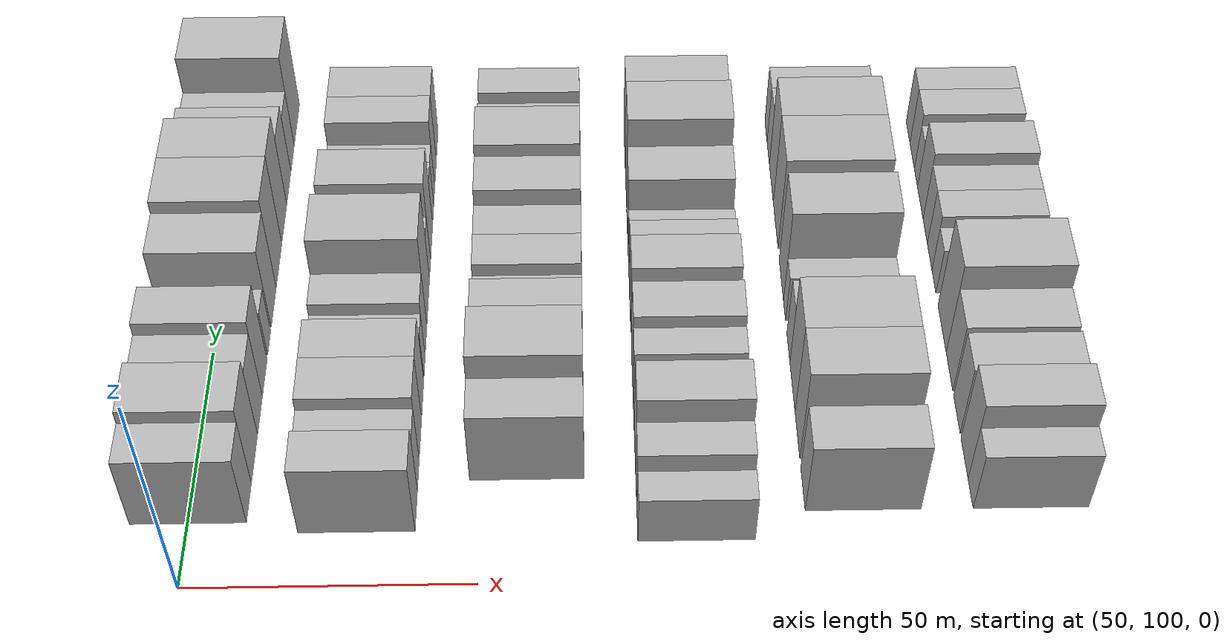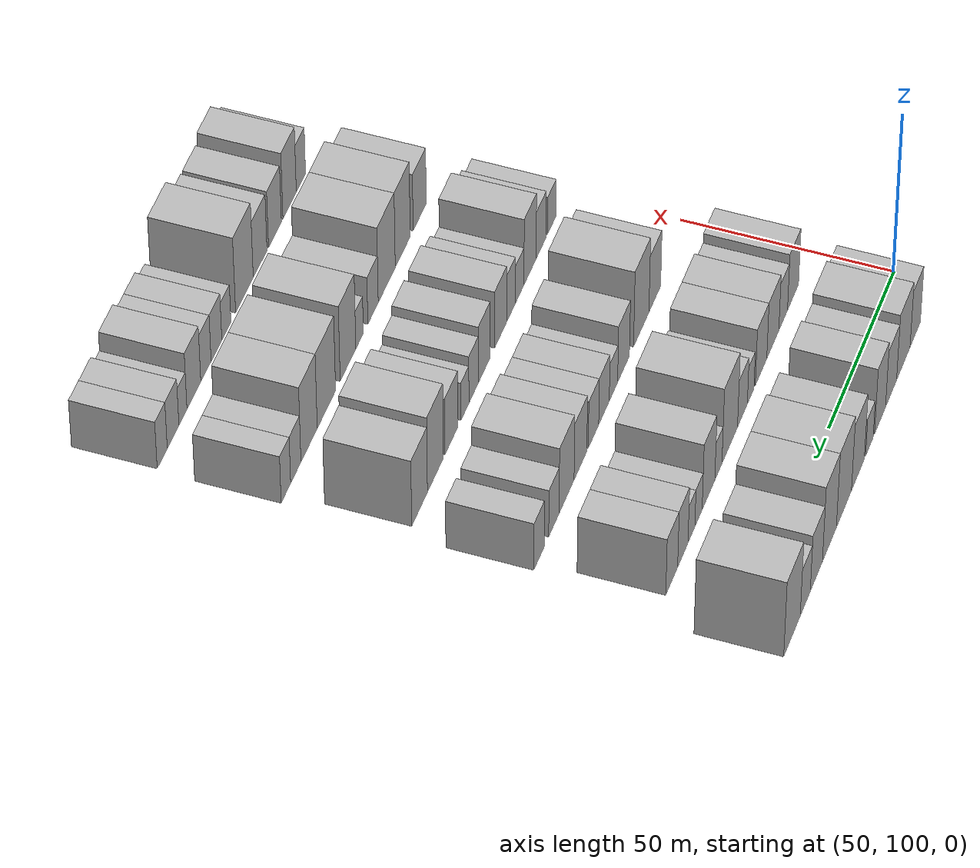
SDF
<sdf version="1.6">
 <world name="default">
  <model name="building_64">
   <static>1</static>
   <pose>50.0000 116.9136 0 0.000000 0.000000 0.000000</pose>
   <link name="link">
    <pose>0 0 9.00 0 0 0</pose>
    <collision name="collision"><geometry><box><size>20.0000 8.1119 18.0000</size></box></geometry></collision>
    <visual name="visual">
     <cast_shadows>0</cast_shadows>
     <geometry><box><size>20.0000 8.1119 18.0000</size></box></geometry>
     <material>
      <script>
       <uri>model://HANNAS_wall/materials/scripts</uri>
       <uri>model://HANNAS_wall/materials/textures</uri>
       <name>vrc/HANNAS_wall</name>
      </script>
     </material>
    </visual>
   </link>
  </model>
  <model name="building_65">
   <static>1</static>
   <pose>50.0000 126.2124 0 0.000000 0.000000 0.000000</pose>
   <link name="link">
    <pose>0 0 10.50 0 0 0</pose>
    <collision name="collision"><geometry><box><size>20.0000 10.4857 21.0000</size></box></geometry></collision>
    <visual name="visual">
     <cast_shadows>0</cast_shadows>
     <geometry><box><size>20.0000 10.4857 21.0000</size></box></geometry>
     <material>
      <script>
       <uri>model://HANNAS_wall/materials/scripts</uri>
       <uri>model://HANNAS_wall/materials/textures</uri>
       <name>vrc/HANNAS_wall</name>
      </script>
     </material>
    </visual>
   </link>
  </model>
  <model name="building_66">
   <static>1</static>
   <pose>50.0000 135.7124 0 0.000000 0.000000 0.000000</pose>
   <link name="link">
    <pose>0 0 9.00 0 0 0</pose>
    <collision name="collision"><geometry><box><size>20.0000 8.5142 18.0000</size></box></geometry></collision>
    <visual name="visual">
     <cast_shadows>0</cast_shadows>
     <geometry><box><size>20.0000 8.5142 18.0000</size></box></geometry>
     <material>
      <script>
       <uri>model://HANNAS_wall/materials/scripts</uri>
       <uri>model://HANNAS_wall/materials/textures</uri>
       <name>vrc/HANNAS_wall</name>
      </script>
     </material>
    </visual>
   </link>
  </model>
  <model name="building_67">
   <static>1</static>
   <pose>50.0000 144.1928 0 0.000000 0.000000 0.000000</pose>
   <link name="link">
    <pose>0 0 10.50 0 0 0</pose>
    <collision name="collision"><geometry><box><size>20.0000 8.4467 21.0000</size></box></geometry></collision>
    <visual name="visual">
     <cast_shadows>0</cast_shadows>
     <geometry><box><size>20.0000 8.4467 21.0000</size></box></geometry>
     <material>
      <script>
       <uri>model://HANNAS_wall/materials/scripts</uri>
       <uri>model://HANNAS_wall/materials/textures</uri>
       <name>vrc/HANNAS_wall</name>
      </script>
     </material>
    </visual>
   </link>
  </model>
  <model name="building_68">
   <static>1</static>
   <pose>50.0000 152.2779 0 0.000000 0.000000 0.000000</pose>
   <link name="link">
    <pose>0 0 6.00 0 0 0</pose>
    <collision name="collision"><geometry><box><size>20.0000 5.7235 12.0000</size></box></geometry></collision>
    <visual name="visual">
     <cast_shadows>0</cast_shadows>
     <geometry><box><size>20.0000 5.7235 12.0000</size></box></geometry>
     <material>
      <script>
       <uri>model://HANNAS_wall/materials/scripts</uri>
       <uri>model://HANNAS_wall/materials/textures</uri>
       <name>vrc/HANNAS_wall</name>
      </script>
     </material>
    </visual>
   </link>
  </model>
  <model name="building_69">
   <static>1</static>
   <pose>50.0000 160.9987 0 0.000000 0.000000 0.000000</pose>
   <link name="link">
    <pose>0 0 10.50 0 0 0</pose>
    <collision name="collision"><geometry><box><size>20.0000 9.7181 21.0000</size></box></geometry></collision>
    <visual name="visual">
     <cast_shadows>0</cast_shadows>
     <geometry><box><size>20.0000 9.7181 21.0000</size></box></geometry>
     <material>
      <script>
       <uri>model://HANNAS_wall/materials/scripts</uri>
       <uri>model://HANNAS_wall/materials/textures</uri>
       <name>vrc/HANNAS_wall</name>
      </script>
     </material>
    </visual>
   </link>
  </model>
  <model name="building_70">
   <static>1</static>
   <pose>50.0000 171.4839 0 0.000000 0.000000 0.000000</pose>
   <link name="link">
    <pose>0 0 12.00 0 0 0</pose>
    <collision name="collision"><geometry><box><size>20.0000 11.2524 24.0000</size></box></geometry></collision>
    <visual name="visual">
     <cast_shadows>0</cast_shadows>
     <geometry><box><size>20.0000 11.2524 24.0000</size></box></geometry>
     <material>
      <script>
       <uri>model://HANNAS_wall/materials/scripts</uri>
       <uri>model://HANNAS_wall/materials/textures</uri>
       <name>vrc/HANNAS_wall</name>
      </script>
     </material>
    </visual>
   </link>
  </model>
  <model name="building_71">
   <static>1</static>
   <pose>50.0000 182.2871 0 0.000000 0.000000 0.000000</pose>
   <link name="link">
    <pose>0 0 12.00 0 0 0</pose>
    <collision name="collision"><geometry><box><size>20.0000 10.3540 24.0000</size></box></geometry></collision>
    <visual name="visual">
     <cast_shadows>0</cast_shadows>
     <geometry><box><size>20.0000 10.3540 24.0000</size></box></geometry>
     <material>
      <script>
       <uri>model://HANNAS_wall/materials/scripts</uri>
       <uri>model://HANNAS_wall/materials/textures</uri>
       <name>vrc/HANNAS_wall</name>
      </script>
     </material>
    </visual>
   </link>
  </model>
  <model name="building_72">
   <static>1</static>
   <pose>50.0000 191.9293 0 0.000000 0.000000 0.000000</pose>
   <link name="link">
    <pose>0 0 9.00 0 0 0</pose>
    <collision name="collision"><geometry><box><size>20.0000 8.9303 18.0000</size></box></geometry></collision>
    <visual name="visual">
     <cast_shadows>0</cast_shadows>
     <geometry><box><size>20.0000 8.9303 18.0000</size></box></geometry>
     <material>
      <script>
       <uri>model://HANNAS_wall/materials/scripts</uri>
       <uri>model://HANNAS_wall/materials/textures</uri>
       <name>vrc/HANNAS_wall</name>
      </script>
     </material>
    </visual>
   </link>
  </model>
  <model name="building_73">
   <static>1</static>
   <pose>50.0000 200.0516 0 0.000000 0.000000 0.000000</pose>
   <link name="link">
    <pose>0 0 7.50 0 0 0</pose>
    <collision name="collision"><geometry><box><size>20.0000 7.3144 15.0000</size></box></geometry></collision>
    <visual name="visual">
     <cast_shadows>0</cast_shadows>
     <geometry><box><size>20.0000 7.3144 15.0000</size></box></geometry>
     <material>
      <script>
       <uri>model://HANNAS_wall/materials/scripts</uri>
       <uri>model://HANNAS_wall/materials/textures</uri>
       <name>vrc/HANNAS_wall</name>
      </script>
     </material>
    </visual>
   </link>
  </model>
  <model name="building_74">
   <static>1</static>
   <pose>50.0000 209.6798 0 0.000000 0.000000 0.000000</pose>
   <link name="link">
    <pose>0 0 12.00 0 0 0</pose>
    <collision name="collision"><geometry><box><size>20.0000 11.9420 24.0000</size></box></geometry></collision>
    <visual name="visual">
     <cast_shadows>0</cast_shadows>
     <geometry><box><size>20.0000 11.9420 24.0000</size></box></geometry>
     <material>
      <script>
       <uri>model://HANNAS_wall/materials/scripts</uri>
       <uri>model://HANNAS_wall/materials/textures</uri>
       <name>vrc/HANNAS_wall</name>
      </script>
     </material>
    </visual>
   </link>
  </model>
  <model name="building_176">
   <static>1</static>
   <pose>79.0000 114.7831 0 0.000000 0.000000 0.000000</pose>
   <link name="link">
    <pose>0 0 9.00 0 0 0</pose>
    <collision name="collision"><geometry><box><size>20.0000 8.3146 18.0000</size></box></geometry></collision>
    <visual name="visual">
     <cast_shadows>0</cast_shadows>
     <geometry><box><size>20.0000 8.3146 18.0000</size></box></geometry>
     <material>
      <script>
       <uri>model://HANNAS_wall/materials/scripts</uri>
       <uri>model://HANNAS_wall/materials/textures</uri>
       <name>vrc/HANNAS_wall</name>
      </script>
     </material>
    </visual>
   </link>
  </model>
  <model name="building_177">
   <static>1</static>
   <pose>79.0000 122.2197 0 0.000000 0.000000 0.000000</pose>
   <link name="link">
    <pose>0 0 7.50 0 0 0</pose>
    <collision name="collision"><geometry><box><size>20.0000 6.5586 15.0000</size></box></geometry></collision>
    <visual name="visual">
     <cast_shadows>0</cast_shadows>
     <geometry><box><size>20.0000 6.5586 15.0000</size></box></geometry>
     <material>
      <script>
       <uri>model://HANNAS_wall/materials/scripts</uri>
       <uri>model://HANNAS_wall/materials/textures</uri>
       <name>vrc/HANNAS_wall</name>
      </script>
     </material>
    </visual>
   </link>
  </model>
  <model name="building_178">
   <static>1</static>
   <pose>79.0000 129.9888 0 0.000000 0.000000 0.000000</pose>
   <link name="link">
    <pose>0 0 9.00 0 0 0</pose>
    <collision name="collision"><geometry><box><size>20.0000 8.9797 18.0000</size></box></geometry></collision>
    <visual name="visual">
     <cast_shadows>0</cast_shadows>
     <geometry><box><size>20.0000 8.9797 18.0000</size></box></geometry>
     <material>
      <script>
       <uri>model://HANNAS_wall/materials/scripts</uri>
       <uri>model://HANNAS_wall/materials/textures</uri>
       <name>vrc/HANNAS_wall</name>
      </script>
     </material>
    </visual>
   </link>
  </model>
  <model name="building_179">
   <static>1</static>
   <pose>79.0000 138.7393 0 0.000000 0.000000 0.000000</pose>
   <link name="link">
    <pose>0 0 9.00 0 0 0</pose>
    <collision name="collision"><geometry><box><size>20.0000 8.5213 18.0000</size></box></geometry></collision>
    <visual name="visual">
     <cast_shadows>0</cast_shadows>
     <geometry><box><size>20.0000 8.5213 18.0000</size></box></geometry>
     <material>
      <script>
       <uri>model://HANNAS_wall/materials/scripts</uri>
       <uri>model://HANNAS_wall/materials/textures</uri>
       <name>vrc/HANNAS_wall</name>
      </script>
     </material>
    </visual>
   </link>
  </model>
  <model name="building_180">
   <static>1</static>
   <pose>79.0000 146.4268 0 0.000000 0.000000 0.000000</pose>
   <link name="link">
    <pose>0 0 6.00 0 0 0</pose>
    <collision name="collision"><geometry><box><size>20.0000 4.8536 12.0000</size></box></geometry></collision>
    <visual name="visual">
     <cast_shadows>0</cast_shadows>
     <geometry><box><size>20.0000 4.8536 12.0000</size></box></geometry>
     <material>
      <script>
       <uri>model://HANNAS_wall/materials/scripts</uri>
       <uri>model://HANNAS_wall/materials/textures</uri>
       <name>vrc/HANNAS_wall</name>
      </script>
     </material>
    </visual>
   </link>
  </model>
  <model name="building_181">
   <static>1</static>
   <pose>79.0000 152.4581 0 0.000000 0.000000 0.000000</pose>
   <link name="link">
    <pose>0 0 7.50 0 0 0</pose>
    <collision name="collision"><geometry><box><size>20.0000 7.2089 15.0000</size></box></geometry></collision>
    <visual name="visual">
     <cast_shadows>0</cast_shadows>
     <geometry><box><size>20.0000 7.2089 15.0000</size></box></geometry>
     <material>
      <script>
       <uri>model://HANNAS_wall/materials/scripts</uri>
       <uri>model://HANNAS_wall/materials/textures</uri>
       <name>vrc/HANNAS_wall</name>
      </script>
     </material>
    </visual>
   </link>
  </model>
  <model name="building_182">
   <static>1</static>
   <pose>79.0000 161.7120 0 0.000000 0.000000 0.000000</pose>
   <link name="link">
    <pose>0 0 12.00 0 0 0</pose>
    <collision name="collision"><geometry><box><size>20.0000 11.2990 24.0000</size></box></geometry></collision>
    <visual name="visual">
     <cast_shadows>0</cast_shadows>
     <geometry><box><size>20.0000 11.2990 24.0000</size></box></geometry>
     <material>
      <script>
       <uri>model://HANNAS_wall/materials/scripts</uri>
       <uri>model://HANNAS_wall/materials/textures</uri>
       <name>vrc/HANNAS_wall</name>
      </script>
     </material>
    </visual>
   </link>
  </model>
  <model name="building_183">
   <static>1</static>
   <pose>79.0000 169.9396 0 0.000000 0.000000 0.000000</pose>
   <link name="link">
    <pose>0 0 6.00 0 0 0</pose>
    <collision name="collision"><geometry><box><size>20.0000 5.1560 12.0000</size></box></geometry></collision>
    <visual name="visual">
     <cast_shadows>0</cast_shadows>
     <geometry><box><size>20.0000 5.1560 12.0000</size></box></geometry>
     <material>
      <script>
       <uri>model://HANNAS_wall/materials/scripts</uri>
       <uri>model://HANNAS_wall/materials/textures</uri>
       <name>vrc/HANNAS_wall</name>
      </script>
     </material>
    </visual>
   </link>
  </model>
  <model name="building_184">
   <static>1</static>
   <pose>79.0000 177.0692 0 0.000000 0.000000 0.000000</pose>
   <link name="link">
    <pose>0 0 10.50 0 0 0</pose>
    <collision name="collision"><geometry><box><size>20.0000 9.1032 21.0000</size></box></geometry></collision>
    <visual name="visual">
     <cast_shadows>0</cast_shadows>
     <geometry><box><size>20.0000 9.1032 21.0000</size></box></geometry>
     <material>
      <script>
       <uri>model://HANNAS_wall/materials/scripts</uri>
       <uri>model://HANNAS_wall/materials/textures</uri>
       <name>vrc/HANNAS_wall</name>
      </script>
     </material>
    </visual>
   </link>
  </model>
  <model name="building_185">
   <static>1</static>
   <pose>79.0000 184.2015 0 0.000000 0.000000 0.000000</pose>
   <link name="link">
    <pose>0 0 6.00 0 0 0</pose>
    <collision name="collision"><geometry><box><size>20.0000 5.1614 12.0000</size></box></geometry></collision>
    <visual name="visual">
     <cast_shadows>0</cast_shadows>
     <geometry><box><size>20.0000 5.1614 12.0000</size></box></geometry>
     <material>
      <script>
       <uri>model://HANNAS_wall/materials/scripts</uri>
       <uri>model://HANNAS_wall/materials/textures</uri>
       <name>vrc/HANNAS_wall</name>
      </script>
     </material>
    </visual>
   </link>
  </model>
  <model name="building_186">
   <static>1</static>
   <pose>79.0000 189.2319 0 0.000000 0.000000 0.000000</pose>
   <link name="link">
    <pose>0 0 6.00 0 0 0</pose>
    <collision name="collision"><geometry><box><size>20.0000 4.8994 12.0000</size></box></geometry></collision>
    <visual name="visual">
     <cast_shadows>0</cast_shadows>
     <geometry><box><size>20.0000 4.8994 12.0000</size></box></geometry>
     <material>
      <script>
       <uri>model://HANNAS_wall/materials/scripts</uri>
       <uri>model://HANNAS_wall/materials/textures</uri>
       <name>vrc/HANNAS_wall</name>
      </script>
     </material>
    </visual>
   </link>
  </model>
  <model name="building_187">
   <static>1</static>
   <pose>79.0000 195.3324 0 0.000000 0.000000 0.000000</pose>
   <link name="link">
    <pose>0 0 9.00 0 0 0</pose>
    <collision name="collision"><geometry><box><size>20.0000 7.3016 18.0000</size></box></geometry></collision>
    <visual name="visual">
     <cast_shadows>0</cast_shadows>
     <geometry><box><size>20.0000 7.3016 18.0000</size></box></geometry>
     <material>
      <script>
       <uri>model://HANNAS_wall/materials/scripts</uri>
       <uri>model://HANNAS_wall/materials/textures</uri>
       <name>vrc/HANNAS_wall</name>
      </script>
     </material>
    </visual>
   </link>
  </model>
  <model name="building_188">
   <static>1</static>
   <pose>79.0000 203.1454 0 0.000000 0.000000 0.000000</pose>
   <link name="link">
    <pose>0 0 9.00 0 0 0</pose>
    <collision name="collision"><geometry><box><size>20.0000 8.3242 18.0000</size></box></geometry></collision>
    <visual name="visual">
     <cast_shadows>0</cast_shadows>
     <geometry><box><size>20.0000 8.3242 18.0000</size></box></geometry>
     <material>
      <script>
       <uri>model://HANNAS_wall/materials/scripts</uri>
       <uri>model://HANNAS_wall/materials/textures</uri>
       <name>vrc/HANNAS_wall</name>
      </script>
     </material>
    </visual>
   </link>
  </model>
  <model name="building_287">
   <static>1</static>
   <pose>108.0000 125.2246 0 0.000000 0.000000 0.000000</pose>
   <link name="link">
    <pose>0 0 9.00 0 0 0</pose>
    <collision name="collision"><geometry><box><size>20.0000 8.4782 18.0000</size></box></geometry></collision>
    <visual name="visual">
     <cast_shadows>0</cast_shadows>
     <geometry><box><size>20.0000 8.4782 18.0000</size></box></geometry>
     <material>
      <script>
       <uri>model://HANNAS_wall/materials/scripts</uri>
       <uri>model://HANNAS_wall/materials/textures</uri>
       <name>vrc/HANNAS_wall</name>
      </script>
     </material>
    </visual>
   </link>
  </model>
  <model name="building_288">
   <static>1</static>
   <pose>108.0000 134.9797 0 0.000000 0.000000 0.000000</pose>
   <link name="link">
    <pose>0 0 12.00 0 0 0</pose>
    <collision name="collision"><geometry><box><size>20.0000 11.0320 24.0000</size></box></geometry></collision>
    <visual name="visual">
     <cast_shadows>0</cast_shadows>
     <geometry><box><size>20.0000 11.0320 24.0000</size></box></geometry>
     <material>
      <script>
       <uri>model://HANNAS_wall/materials/scripts</uri>
       <uri>model://HANNAS_wall/materials/textures</uri>
       <name>vrc/HANNAS_wall</name>
      </script>
     </material>
    </visual>
   </link>
  </model>
  <model name="building_289">
   <static>1</static>
   <pose>108.0000 147.6686 0 0.000000 0.000000 0.000000</pose>
   <link name="link">
    <pose>0 0 9.00 0 0 0</pose>
    <collision name="collision"><geometry><box><size>20.0000 8.3458 18.0000</size></box></geometry></collision>
    <visual name="visual">
     <cast_shadows>0</cast_shadows>
     <geometry><box><size>20.0000 8.3458 18.0000</size></box></geometry>
     <material>
      <script>
       <uri>model://HANNAS_wall/materials/scripts</uri>
       <uri>model://HANNAS_wall/materials/textures</uri>
       <name>vrc/HANNAS_wall</name>
      </script>
     </material>
    </visual>
   </link>
  </model>
  <model name="building_290">
   <static>1</static>
   <pose>108.0000 154.7958 0 0.000000 0.000000 0.000000</pose>
   <link name="link">
    <pose>0 0 6.00 0 0 0</pose>
    <collision name="collision"><geometry><box><size>20.0000 5.9087 12.0000</size></box></geometry></collision>
    <visual name="visual">
     <cast_shadows>0</cast_shadows>
     <geometry><box><size>20.0000 5.9087 12.0000</size></box></geometry>
     <material>
      <script>
       <uri>model://HANNAS_wall/materials/scripts</uri>
       <uri>model://HANNAS_wall/materials/textures</uri>
       <name>vrc/HANNAS_wall</name>
      </script>
     </material>
    </visual>
   </link>
  </model>
  <model name="building_291">
   <static>1</static>
   <pose>108.0000 161.4701 0 0.000000 0.000000 0.000000</pose>
   <link name="link">
    <pose>0 0 7.50 0 0 0</pose>
    <collision name="collision"><geometry><box><size>20.0000 7.4401 15.0000</size></box></geometry></collision>
    <visual name="visual">
     <cast_shadows>0</cast_shadows>
     <geometry><box><size>20.0000 7.4401 15.0000</size></box></geometry>
     <material>
      <script>
       <uri>model://HANNAS_wall/materials/scripts</uri>
       <uri>model://HANNAS_wall/materials/textures</uri>
       <name>vrc/HANNAS_wall</name>
      </script>
     </material>
    </visual>
   </link>
  </model>
  <model name="building_292">
   <static>1</static>
   <pose>108.0000 168.8189 0 0.000000 0.000000 0.000000</pose>
   <link name="link">
    <pose>0 0 7.50 0 0 0</pose>
    <collision name="collision"><geometry><box><size>20.0000 7.2574 15.0000</size></box></geometry></collision>
    <visual name="visual">
     <cast_shadows>0</cast_shadows>
     <geometry><box><size>20.0000 7.2574 15.0000</size></box></geometry>
     <material>
      <script>
       <uri>model://HANNAS_wall/materials/scripts</uri>
       <uri>model://HANNAS_wall/materials/textures</uri>
       <name>vrc/HANNAS_wall</name>
      </script>
     </material>
    </visual>
   </link>
  </model>
  <model name="building_293">
   <static>1</static>
   <pose>108.0000 177.8644 0 0.000000 0.000000 0.000000</pose>
   <link name="link">
    <pose>0 0 9.00 0 0 0</pose>
    <collision name="collision"><geometry><box><size>20.0000 8.8335 18.0000</size></box></geometry></collision>
    <visual name="visual">
     <cast_shadows>0</cast_shadows>
     <geometry><box><size>20.0000 8.8335 18.0000</size></box></geometry>
     <material>
      <script>
       <uri>model://HANNAS_wall/materials/scripts</uri>
       <uri>model://HANNAS_wall/materials/textures</uri>
       <name>vrc/HANNAS_wall</name>
      </script>
     </material>
    </visual>
   </link>
  </model>
  <model name="building_294">
   <static>1</static>
   <pose>108.0000 187.4344 0 0.000000 0.000000 0.000000</pose>
   <link name="link">
    <pose>0 0 10.50 0 0 0</pose>
    <collision name="collision"><geometry><box><size>20.0000 10.3065 21.0000</size></box></geometry></collision>
    <visual name="visual">
     <cast_shadows>0</cast_shadows>
     <geometry><box><size>20.0000 10.3065 21.0000</size></box></geometry>
     <material>
      <script>
       <uri>model://HANNAS_wall/materials/scripts</uri>
       <uri>model://HANNAS_wall/materials/textures</uri>
       <name>vrc/HANNAS_wall</name>
      </script>
     </material>
    </visual>
   </link>
  </model>
  <model name="building_295">
   <static>1</static>
   <pose>108.0000 196.1230 0 0.000000 0.000000 0.000000</pose>
   <link name="link">
    <pose>0 0 7.50 0 0 0</pose>
    <collision name="collision"><geometry><box><size>20.0000 7.0709 15.0000</size></box></geometry></collision>
    <visual name="visual">
     <cast_shadows>0</cast_shadows>
     <geometry><box><size>20.0000 7.0709 15.0000</size></box></geometry>
     <material>
      <script>
       <uri>model://HANNAS_wall/materials/scripts</uri>
       <uri>model://HANNAS_wall/materials/textures</uri>
       <name>vrc/HANNAS_wall</name>
      </script>
     </material>
    </visual>
   </link>
  </model>
  <model name="building_296">
   <static>1</static>
   <pose>108.0000 206.1679 0 0.000000 0.000000 0.000000</pose>
   <link name="link">
    <pose>0 0 7.50 0 0 0</pose>
    <collision name="collision"><geometry><box><size>20.0000 7.0188 15.0000</size></box></geometry></collision>
    <visual name="visual">
     <cast_shadows>0</cast_shadows>
     <geometry><box><size>20.0000 7.0188 15.0000</size></box></geometry>
     <material>
      <script>
       <uri>model://HANNAS_wall/materials/scripts</uri>
       <uri>model://HANNAS_wall/materials/textures</uri>
       <name>vrc/HANNAS_wall</name>
      </script>
     </material>
    </visual>
   </link>
  </model>
  <model name="building_397">
   <static>1</static>
   <pose>137.0000 110.9256 0 0.000000 0.000000 0.000000</pose>
   <link name="link">
    <pose>0 0 6.00 0 0 0</pose>
    <collision name="collision"><geometry><box><size>20.0000 5.9921 12.0000</size></box></geometry></collision>
    <visual name="visual">
     <cast_shadows>0</cast_shadows>
     <geometry><box><size>20.0000 5.9921 12.0000</size></box></geometry>
     <material>
      <script>
       <uri>model://HANNAS_wall/materials/scripts</uri>
       <uri>model://HANNAS_wall/materials/textures</uri>
       <name>vrc/HANNAS_wall</name>
      </script>
     </material>
    </visual>
   </link>
  </model>
  <model name="building_398">
   <static>1</static>
   <pose>137.0000 118.4173 0 0.000000 0.000000 0.000000</pose>
   <link name="link">
    <pose>0 0 7.50 0 0 0</pose>
    <collision name="collision"><geometry><box><size>20.0000 6.9913 15.0000</size></box></geometry></collision>
    <visual name="visual">
     <cast_shadows>0</cast_shadows>
     <geometry><box><size>20.0000 6.9913 15.0000</size></box></geometry>
     <material>
      <script>
       <uri>model://HANNAS_wall/materials/scripts</uri>
       <uri>model://HANNAS_wall/materials/textures</uri>
       <name>vrc/HANNAS_wall</name>
      </script>
     </material>
    </visual>
   </link>
  </model>
  <model name="building_399">
   <static>1</static>
   <pose>137.0000 126.1770 0 0.000000 0.000000 0.000000</pose>
   <link name="link">
    <pose>0 0 10.50 0 0 0</pose>
    <collision name="collision"><geometry><box><size>20.0000 8.5282 21.0000</size></box></geometry></collision>
    <visual name="visual">
     <cast_shadows>0</cast_shadows>
     <geometry><box><size>20.0000 8.5282 21.0000</size></box></geometry>
     <material>
      <script>
       <uri>model://HANNAS_wall/materials/scripts</uri>
       <uri>model://HANNAS_wall/materials/textures</uri>
       <name>vrc/HANNAS_wall</name>
      </script>
     </material>
    </visual>
   </link>
  </model>
  <model name="building_400">
   <static>1</static>
   <pose>137.0000 133.4382 0 0.000000 0.000000 0.000000</pose>
   <link name="link">
    <pose>0 0 6.00 0 0 0</pose>
    <collision name="collision"><geometry><box><size>20.0000 5.9942 12.0000</size></box></geometry></collision>
    <visual name="visual">
     <cast_shadows>0</cast_shadows>
     <geometry><box><size>20.0000 5.9942 12.0000</size></box></geometry>
     <material>
      <script>
       <uri>model://HANNAS_wall/materials/scripts</uri>
       <uri>model://HANNAS_wall/materials/textures</uri>
       <name>vrc/HANNAS_wall</name>
      </script>
     </material>
    </visual>
   </link>
  </model>
  <model name="building_401">
   <static>1</static>
   <pose>137.0000 139.4625 0 0.000000 0.000000 0.000000</pose>
   <link name="link">
    <pose>0 0 7.50 0 0 0</pose>
    <collision name="collision"><geometry><box><size>20.0000 6.0544 15.0000</size></box></geometry></collision>
    <visual name="visual">
     <cast_shadows>0</cast_shadows>
     <geometry><box><size>20.0000 6.0544 15.0000</size></box></geometry>
     <material>
      <script>
       <uri>model://HANNAS_wall/materials/scripts</uri>
       <uri>model://HANNAS_wall/materials/textures</uri>
       <name>vrc/HANNAS_wall</name>
      </script>
     </material>
    </visual>
   </link>
  </model>
  <model name="building_402">
   <static>1</static>
   <pose>137.0000 146.6175 0 0.000000 0.000000 0.000000</pose>
   <link name="link">
    <pose>0 0 9.00 0 0 0</pose>
    <collision name="collision"><geometry><box><size>20.0000 8.2556 18.0000</size></box></geometry></collision>
    <visual name="visual">
     <cast_shadows>0</cast_shadows>
     <geometry><box><size>20.0000 8.2556 18.0000</size></box></geometry>
     <material>
      <script>
       <uri>model://HANNAS_wall/materials/scripts</uri>
       <uri>model://HANNAS_wall/materials/textures</uri>
       <name>vrc/HANNAS_wall</name>
      </script>
     </material>
    </visual>
   </link>
  </model>
  <model name="building_403">
   <static>1</static>
   <pose>137.0000 157.8126 0 0.000000 0.000000 0.000000</pose>
   <link name="link">
    <pose>0 0 9.00 0 0 0</pose>
    <collision name="collision"><geometry><box><size>20.0000 8.1345 18.0000</size></box></geometry></collision>
    <visual name="visual">
     <cast_shadows>0</cast_shadows>
     <geometry><box><size>20.0000 8.1345 18.0000</size></box></geometry>
     <material>
      <script>
       <uri>model://HANNAS_wall/materials/scripts</uri>
       <uri>model://HANNAS_wall/materials/textures</uri>
       <name>vrc/HANNAS_wall</name>
      </script>
     </material>
    </visual>
   </link>
  </model>
  <model name="building_404">
   <static>1</static>
   <pose>137.0000 165.0633 0 0.000000 0.000000 0.000000</pose>
   <link name="link">
    <pose>0 0 7.50 0 0 0</pose>
    <collision name="collision"><geometry><box><size>20.0000 6.3670 15.0000</size></box></geometry></collision>
    <visual name="visual">
     <cast_shadows>0</cast_shadows>
     <geometry><box><size>20.0000 6.3670 15.0000</size></box></geometry>
     <material>
      <script>
       <uri>model://HANNAS_wall/materials/scripts</uri>
       <uri>model://HANNAS_wall/materials/textures</uri>
       <name>vrc/HANNAS_wall</name>
      </script>
     </material>
    </visual>
   </link>
  </model>
  <model name="building_405">
   <static>1</static>
   <pose>137.0000 170.9078 0 0.000000 0.000000 0.000000</pose>
   <link name="link">
    <pose>0 0 6.00 0 0 0</pose>
    <collision name="collision"><geometry><box><size>20.0000 5.3220 12.0000</size></box></geometry></collision>
    <visual name="visual">
     <cast_shadows>0</cast_shadows>
     <geometry><box><size>20.0000 5.3220 12.0000</size></box></geometry>
     <material>
      <script>
       <uri>model://HANNAS_wall/materials/scripts</uri>
       <uri>model://HANNAS_wall/materials/textures</uri>
       <name>vrc/HANNAS_wall</name>
      </script>
     </material>
    </visual>
   </link>
  </model>
  <model name="building_406">
   <static>1</static>
   <pose>137.0000 179.9813 0 0.000000 0.000000 0.000000</pose>
   <link name="link">
    <pose>0 0 9.00 0 0 0</pose>
    <collision name="collision"><geometry><box><size>20.0000 8.8250 18.0000</size></box></geometry></collision>
    <visual name="visual">
     <cast_shadows>0</cast_shadows>
     <geometry><box><size>20.0000 8.8250 18.0000</size></box></geometry>
     <material>
      <script>
       <uri>model://HANNAS_wall/materials/scripts</uri>
       <uri>model://HANNAS_wall/materials/textures</uri>
       <name>vrc/HANNAS_wall</name>
      </script>
     </material>
    </visual>
   </link>
  </model>
  <model name="building_407">
   <static>1</static>
   <pose>137.0000 190.6715 0 0.000000 0.000000 0.000000</pose>
   <link name="link">
    <pose>0 0 12.00 0 0 0</pose>
    <collision name="collision"><geometry><box><size>20.0000 10.5555 24.0000</size></box></geometry></collision>
    <visual name="visual">
     <cast_shadows>0</cast_shadows>
     <geometry><box><size>20.0000 10.5555 24.0000</size></box></geometry>
     <material>
      <script>
       <uri>model://HANNAS_wall/materials/scripts</uri>
       <uri>model://HANNAS_wall/materials/textures</uri>
       <name>vrc/HANNAS_wall</name>
      </script>
     </material>
    </visual>
   </link>
  </model>
  <model name="building_408">
   <static>1</static>
   <pose>137.0000 201.1073 0 0.000000 0.000000 0.000000</pose>
   <link name="link">
    <pose>0 0 10.50 0 0 0</pose>
    <collision name="collision"><geometry><box><size>20.0000 10.3161 21.0000</size></box></geometry></collision>
    <visual name="visual">
     <cast_shadows>0</cast_shadows>
     <geometry><box><size>20.0000 10.3161 21.0000</size></box></geometry>
     <material>
      <script>
       <uri>model://HANNAS_wall/materials/scripts</uri>
       <uri>model://HANNAS_wall/materials/textures</uri>
       <name>vrc/HANNAS_wall</name>
      </script>
     </material>
    </visual>
   </link>
  </model>
  <model name="building_520">
   <static>1</static>
   <pose>166.0000 118.0892 0 0.000000 0.000000 0.000000</pose>
   <link name="link">
    <pose>0 0 9.00 0 0 0</pose>
    <collision name="collision"><geometry><box><size>20.0000 8.9223 18.0000</size></box></geometry></collision>
    <visual name="visual">
     <cast_shadows>0</cast_shadows>
     <geometry><box><size>20.0000 8.9223 18.0000</size></box></geometry>
     <material>
      <script>
       <uri>model://HANNAS_wall/materials/scripts</uri>
       <uri>model://HANNAS_wall/materials/textures</uri>
       <name>vrc/HANNAS_wall</name>
      </script>
     </material>
    </visual>
   </link>
  </model>
  <model name="building_521">
   <static>1</static>
   <pose>166.0000 129.6078 0 0.000000 0.000000 0.000000</pose>
   <link name="link">
    <pose>0 0 12.00 0 0 0</pose>
    <collision name="collision"><geometry><box><size>20.0000 10.1149 24.0000</size></box></geometry></collision>
    <visual name="visual">
     <cast_shadows>0</cast_shadows>
     <geometry><box><size>20.0000 10.1149 24.0000</size></box></geometry>
     <material>
      <script>
       <uri>model://HANNAS_wall/materials/scripts</uri>
       <uri>model://HANNAS_wall/materials/textures</uri>
       <name>vrc/HANNAS_wall</name>
      </script>
     </material>
    </visual>
   </link>
  </model>
  <model name="building_522">
   <static>1</static>
   <pose>166.0000 140.3674 0 0.000000 0.000000 0.000000</pose>
   <link name="link">
    <pose>0 0 12.00 0 0 0</pose>
    <collision name="collision"><geometry><box><size>20.0000 11.4043 24.0000</size></box></geometry></collision>
    <visual name="visual">
     <cast_shadows>0</cast_shadows>
     <geometry><box><size>20.0000 11.4043 24.0000</size></box></geometry>
     <material>
      <script>
       <uri>model://HANNAS_wall/materials/scripts</uri>
       <uri>model://HANNAS_wall/materials/textures</uri>
       <name>vrc/HANNAS_wall</name>
      </script>
     </material>
    </visual>
   </link>
  </model>
  <model name="building_523">
   <static>1</static>
   <pose>166.0000 149.5270 0 0.000000 0.000000 0.000000</pose>
   <link name="link">
    <pose>0 0 7.50 0 0 0</pose>
    <collision name="collision"><geometry><box><size>20.0000 6.9148 15.0000</size></box></geometry></collision>
    <visual name="visual">
     <cast_shadows>0</cast_shadows>
     <geometry><box><size>20.0000 6.9148 15.0000</size></box></geometry>
     <material>
      <script>
       <uri>model://HANNAS_wall/materials/scripts</uri>
       <uri>model://HANNAS_wall/materials/textures</uri>
       <name>vrc/HANNAS_wall</name>
      </script>
     </material>
    </visual>
   </link>
  </model>
  <model name="building_524">
   <static>1</static>
   <pose>166.0000 158.4574 0 0.000000 0.000000 0.000000</pose>
   <link name="link">
    <pose>0 0 6.00 0 0 0</pose>
    <collision name="collision"><geometry><box><size>20.0000 4.9459 12.0000</size></box></geometry></collision>
    <visual name="visual">
     <cast_shadows>0</cast_shadows>
     <geometry><box><size>20.0000 4.9459 12.0000</size></box></geometry>
     <material>
      <script>
       <uri>model://HANNAS_wall/materials/scripts</uri>
       <uri>model://HANNAS_wall/materials/textures</uri>
       <name>vrc/HANNAS_wall</name>
      </script>
     </material>
    </visual>
   </link>
  </model>
  <model name="building_525">
   <static>1</static>
   <pose>166.0000 166.0525 0 0.000000 0.000000 0.000000</pose>
   <link name="link">
    <pose>0 0 12.00 0 0 0</pose>
    <collision name="collision"><geometry><box><size>20.0000 10.2443 24.0000</size></box></geometry></collision>
    <visual name="visual">
     <cast_shadows>0</cast_shadows>
     <geometry><box><size>20.0000 10.2443 24.0000</size></box></geometry>
     <material>
      <script>
       <uri>model://HANNAS_wall/materials/scripts</uri>
       <uri>model://HANNAS_wall/materials/textures</uri>
       <name>vrc/HANNAS_wall</name>
      </script>
     </material>
    </visual>
   </link>
  </model>
  <model name="building_526">
   <static>1</static>
   <pose>166.0000 180.1166 0 0.000000 0.000000 0.000000</pose>
   <link name="link">
    <pose>0 0 12.00 0 0 0</pose>
    <collision name="collision"><geometry><box><size>20.0000 11.8839 24.0000</size></box></geometry></collision>
    <visual name="visual">
     <cast_shadows>0</cast_shadows>
     <geometry><box><size>20.0000 11.8839 24.0000</size></box></geometry>
     <material>
      <script>
       <uri>model://HANNAS_wall/materials/scripts</uri>
       <uri>model://HANNAS_wall/materials/textures</uri>
       <name>vrc/HANNAS_wall</name>
      </script>
     </material>
    </visual>
   </link>
  </model>
  <model name="building_527">
   <static>1</static>
   <pose>166.0000 191.2908 0 0.000000 0.000000 0.000000</pose>
   <link name="link">
    <pose>0 0 12.00 0 0 0</pose>
    <collision name="collision"><geometry><box><size>20.0000 10.4646 24.0000</size></box></geometry></collision>
    <visual name="visual">
     <cast_shadows>0</cast_shadows>
     <geometry><box><size>20.0000 10.4646 24.0000</size></box></geometry>
     <material>
      <script>
       <uri>model://HANNAS_wall/materials/scripts</uri>
       <uri>model://HANNAS_wall/materials/textures</uri>
       <name>vrc/HANNAS_wall</name>
      </script>
     </material>
    </visual>
   </link>
  </model>
  <model name="building_528">
   <static>1</static>
   <pose>166.0000 199.7976 0 0.000000 0.000000 0.000000</pose>
   <link name="link">
    <pose>0 0 7.50 0 0 0</pose>
    <collision name="collision"><geometry><box><size>20.0000 6.5489 15.0000</size></box></geometry></collision>
    <visual name="visual">
     <cast_shadows>0</cast_shadows>
     <geometry><box><size>20.0000 6.5489 15.0000</size></box></geometry>
     <material>
      <script>
       <uri>model://HANNAS_wall/materials/scripts</uri>
       <uri>model://HANNAS_wall/materials/textures</uri>
       <name>vrc/HANNAS_wall</name>
      </script>
     </material>
    </visual>
   </link>
  </model>
  <model name="building_529">
   <static>1</static>
   <pose>166.0000 206.0812 0 0.000000 0.000000 0.000000</pose>
   <link name="link">
    <pose>0 0 7.50 0 0 0</pose>
    <collision name="collision"><geometry><box><size>20.0000 6.0183 15.0000</size></box></geometry></collision>
    <visual name="visual">
     <cast_shadows>0</cast_shadows>
     <geometry><box><size>20.0000 6.0183 15.0000</size></box></geometry>
     <material>
      <script>
       <uri>model://HANNAS_wall/materials/scripts</uri>
       <uri>model://HANNAS_wall/materials/textures</uri>
       <name>vrc/HANNAS_wall</name>
      </script>
     </material>
    </visual>
   </link>
  </model>
  <model name="building_631">
   <static>1</static>
   <pose>195.0000 116.6644 0 0.000000 0.000000 0.000000</pose>
   <link name="link">
    <pose>0 0 7.50 0 0 0</pose>
    <collision name="collision"><geometry><box><size>20.0000 6.1260 15.0000</size></box></geometry></collision>
    <visual name="visual">
     <cast_shadows>0</cast_shadows>
     <geometry><box><size>20.0000 6.1260 15.0000</size></box></geometry>
     <material>
      <script>
       <uri>model://HANNAS_wall/materials/scripts</uri>
       <uri>model://HANNAS_wall/materials/textures</uri>
       <name>vrc/HANNAS_wall</name>
      </script>
     </material>
    </visual>
   </link>
  </model>
  <model name="building_632">
   <static>1</static>
   <pose>195.0000 124.1303 0 0.000000 0.000000 0.000000</pose>
   <link name="link">
    <pose>0 0 10.50 0 0 0</pose>
    <collision name="collision"><geometry><box><size>20.0000 8.8060 21.0000</size></box></geometry></collision>
    <visual name="visual">
     <cast_shadows>0</cast_shadows>
     <geometry><box><size>20.0000 8.8060 21.0000</size></box></geometry>
     <material>
      <script>
       <uri>model://HANNAS_wall/materials/scripts</uri>
       <uri>model://HANNAS_wall/materials/textures</uri>
       <name>vrc/HANNAS_wall</name>
      </script>
     </material>
    </visual>
   </link>
  </model>
  <model name="building_633">
   <static>1</static>
   <pose>195.0000 133.7466 0 0.000000 0.000000 0.000000</pose>
   <link name="link">
    <pose>0 0 9.00 0 0 0</pose>
    <collision name="collision"><geometry><box><size>20.0000 8.4267 18.0000</size></box></geometry></collision>
    <visual name="visual">
     <cast_shadows>0</cast_shadows>
     <geometry><box><size>20.0000 8.4267 18.0000</size></box></geometry>
     <material>
      <script>
       <uri>model://HANNAS_wall/materials/scripts</uri>
       <uri>model://HANNAS_wall/materials/textures</uri>
       <name>vrc/HANNAS_wall</name>
      </script>
     </material>
    </visual>
   </link>
  </model>
  <model name="building_634">
   <static>1</static>
   <pose>195.0000 143.4215 0 0.000000 0.000000 0.000000</pose>
   <link name="link">
    <pose>0 0 9.00 0 0 0</pose>
    <collision name="collision"><geometry><box><size>20.0000 8.9229 18.0000</size></box></geometry></collision>
    <visual name="visual">
     <cast_shadows>0</cast_shadows>
     <geometry><box><size>20.0000 8.9229 18.0000</size></box></geometry>
     <material>
      <script>
       <uri>model://HANNAS_wall/materials/scripts</uri>
       <uri>model://HANNAS_wall/materials/textures</uri>
       <name>vrc/HANNAS_wall</name>
      </script>
     </material>
    </visual>
   </link>
  </model>
  <model name="building_635">
   <static>1</static>
   <pose>195.0000 153.5515 0 0.000000 0.000000 0.000000</pose>
   <link name="link">
    <pose>0 0 12.00 0 0 0</pose>
    <collision name="collision"><geometry><box><size>20.0000 11.3372 24.0000</size></box></geometry></collision>
    <visual name="visual">
     <cast_shadows>0</cast_shadows>
     <geometry><box><size>20.0000 11.3372 24.0000</size></box></geometry>
     <material>
      <script>
       <uri>model://HANNAS_wall/materials/scripts</uri>
       <uri>model://HANNAS_wall/materials/textures</uri>
       <name>vrc/HANNAS_wall</name>
      </script>
     </material>
    </visual>
   </link>
  </model>
  <model name="building_636">
   <static>1</static>
   <pose>195.0000 165.1244 0 0.000000 0.000000 0.000000</pose>
   <link name="link">
    <pose>0 0 6.00 0 0 0</pose>
    <collision name="collision"><geometry><box><size>20.0000 5.8086 12.0000</size></box></geometry></collision>
    <visual name="visual">
     <cast_shadows>0</cast_shadows>
     <geometry><box><size>20.0000 5.8086 12.0000</size></box></geometry>
     <material>
      <script>
       <uri>model://HANNAS_wall/materials/scripts</uri>
       <uri>model://HANNAS_wall/materials/textures</uri>
       <name>vrc/HANNAS_wall</name>
      </script>
     </material>
    </visual>
   </link>
  </model>
  <model name="building_637">
   <static>1</static>
   <pose>195.0000 171.4128 0 0.000000 0.000000 0.000000</pose>
   <link name="link">
    <pose>0 0 7.50 0 0 0</pose>
    <collision name="collision"><geometry><box><size>20.0000 6.7682 15.0000</size></box></geometry></collision>
    <visual name="visual">
     <cast_shadows>0</cast_shadows>
     <geometry><box><size>20.0000 6.7682 15.0000</size></box></geometry>
     <material>
      <script>
       <uri>model://HANNAS_wall/materials/scripts</uri>
       <uri>model://HANNAS_wall/materials/textures</uri>
       <name>vrc/HANNAS_wall</name>
      </script>
     </material>
    </visual>
   </link>
  </model>
  <model name="building_638">
   <static>1</static>
   <pose>195.0000 178.0460 0 0.000000 0.000000 0.000000</pose>
   <link name="link">
    <pose>0 0 7.50 0 0 0</pose>
    <collision name="collision"><geometry><box><size>20.0000 6.4981 15.0000</size></box></geometry></collision>
    <visual name="visual">
     <cast_shadows>0</cast_shadows>
     <geometry><box><size>20.0000 6.4981 15.0000</size></box></geometry>
     <material>
      <script>
       <uri>model://HANNAS_wall/materials/scripts</uri>
       <uri>model://HANNAS_wall/materials/textures</uri>
       <name>vrc/HANNAS_wall</name>
      </script>
     </material>
    </visual>
   </link>
  </model>
  <model name="building_639">
   <static>1</static>
   <pose>195.0000 185.6200 0 0.000000 0.000000 0.000000</pose>
   <link name="link">
    <pose>0 0 9.00 0 0 0</pose>
    <collision name="collision"><geometry><box><size>20.0000 8.6500 18.0000</size></box></geometry></collision>
    <visual name="visual">
     <cast_shadows>0</cast_shadows>
     <geometry><box><size>20.0000 8.6500 18.0000</size></box></geometry>
     <material>
      <script>
       <uri>model://HANNAS_wall/materials/scripts</uri>
       <uri>model://HANNAS_wall/materials/textures</uri>
       <name>vrc/HANNAS_wall</name>
      </script>
     </material>
    </visual>
   </link>
  </model>
  <model name="building_640">
   <static>1</static>
   <pose>195.0000 192.4524 0 0.000000 0.000000 0.000000</pose>
   <link name="link">
    <pose>0 0 6.00 0 0 0</pose>
    <collision name="collision"><geometry><box><size>20.0000 5.0147 12.0000</size></box></geometry></collision>
    <visual name="visual">
     <cast_shadows>0</cast_shadows>
     <geometry><box><size>20.0000 5.0147 12.0000</size></box></geometry>
     <material>
      <script>
       <uri>model://HANNAS_wall/materials/scripts</uri>
       <uri>model://HANNAS_wall/materials/textures</uri>
       <name>vrc/HANNAS_wall</name>
      </script>
     </material>
    </visual>
   </link>
  </model>
  <model name="building_641">
   <static>1</static>
   <pose>195.0000 198.5645 0 0.000000 0.000000 0.000000</pose>
   <link name="link">
    <pose>0 0 7.50 0 0 0</pose>
    <collision name="collision"><geometry><box><size>20.0000 7.2096 15.0000</size></box></geometry></collision>
    <visual name="visual">
     <cast_shadows>0</cast_shadows>
     <geometry><box><size>20.0000 7.2096 15.0000</size></box></geometry>
     <material>
      <script>
       <uri>model://HANNAS_wall/materials/scripts</uri>
       <uri>model://HANNAS_wall/materials/textures</uri>
       <name>vrc/HANNAS_wall</name>
      </script>
     </material>
    </visual>
   </link>
  </model>
  <model name="building_642">
   <static>1</static>
   <pose>195.0000 205.2700 0 0.000000 0.000000 0.000000</pose>
   <link name="link">
    <pose>0 0 7.50 0 0 0</pose>
    <collision name="collision"><geometry><box><size>20.0000 6.2015 15.0000</size></box></geometry></collision>
    <visual name="visual">
     <cast_shadows>0</cast_shadows>
     <geometry><box><size>20.0000 6.2015 15.0000</size></box></geometry>
     <material>
      <script>
       <uri>model://HANNAS_wall/materials/scripts</uri>
       <uri>model://HANNAS_wall/materials/textures</uri>
       <name>vrc/HANNAS_wall</name>
      </script>
     </material>
    </visual>
   </link>
  </model>
 </world>
</sdf>
